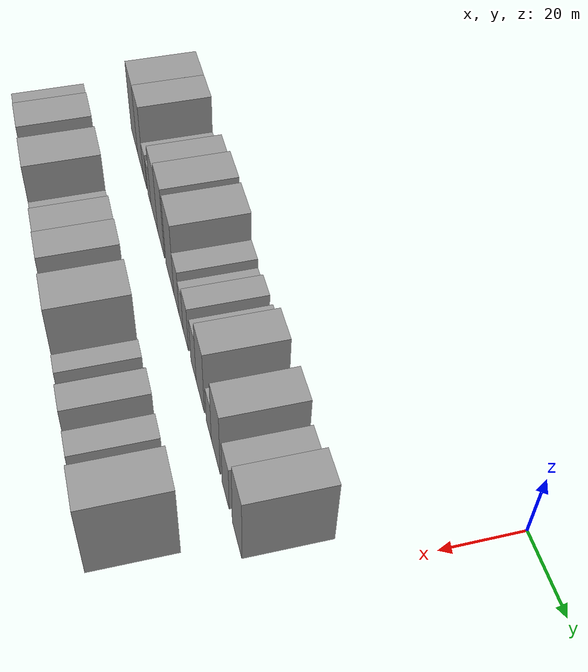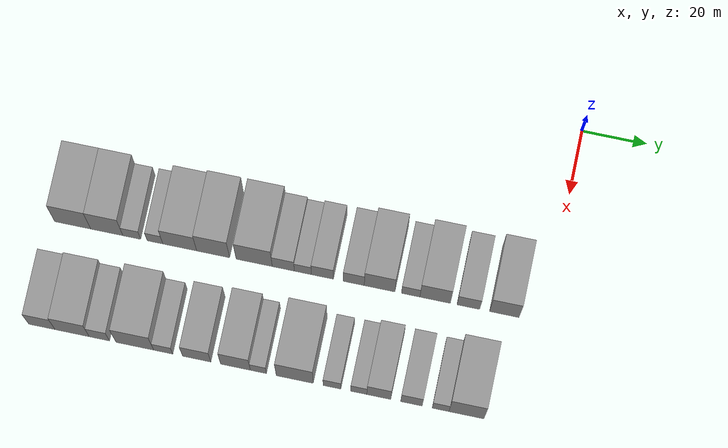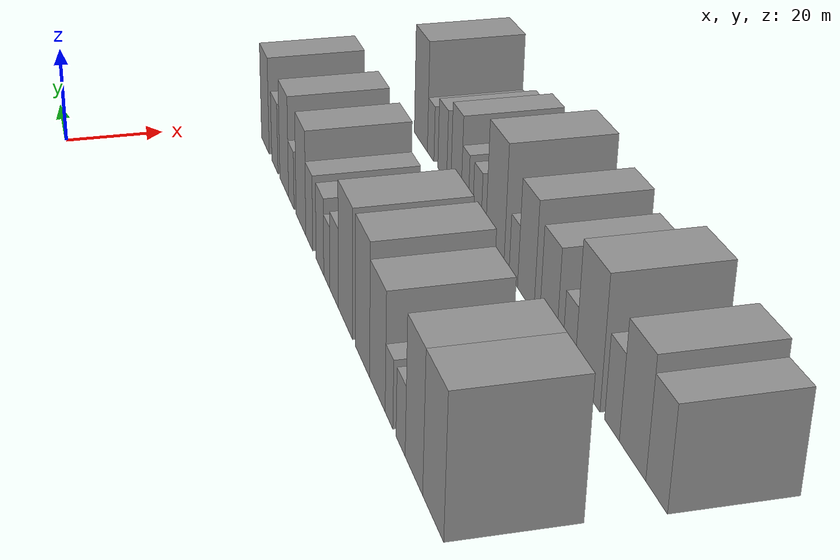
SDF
<sdf version="1.6">
 <world name="default">
  <model name="building_16">
   <static>1</static>
   <pose>50.0000 -144.1960 0 0.000000 0.000000 0.000000</pose>
   <link name="link">
    <pose>0 0 12.00 0 0 0</pose>
    <collision name="collision"><geometry><box><size>20.0000 11.0698 24.0000</size></box></geometry></collision>
    <visual name="visual">
     <cast_shadows>0</cast_shadows>
     <geometry><box><size>20.0000 11.0698 24.0000</size></box></geometry>
     <material>
      <script>
       <uri>model://grey_wall/materials/scripts</uri>
       <uri>model://grey_wall/materials/textures</uri>
       <name>vrc/grey_wall</name>
      </script>
     </material>
    </visual>
   </link>
  </model>
  <model name="building_17">
   <static>1</static>
   <pose>50.0000 -133.6998 0 0.000000 0.000000 0.000000</pose>
   <link name="link">
    <pose>0 0 12.00 0 0 0</pose>
    <collision name="collision"><geometry><box><size>20.0000 9.9225 24.0000</size></box></geometry></collision>
    <visual name="visual">
     <cast_shadows>0</cast_shadows>
     <geometry><box><size>20.0000 9.9225 24.0000</size></box></geometry>
     <material>
      <script>
       <uri>model://grey_wall/materials/scripts</uri>
       <uri>model://grey_wall/materials/textures</uri>
       <name>vrc/grey_wall</name>
      </script>
     </material>
    </visual>
   </link>
  </model>
  <model name="building_18">
   <static>1</static>
   <pose>50.0000 -126.0071 0 0.000000 0.000000 0.000000</pose>
   <link name="link">
    <pose>0 0 6.00 0 0 0</pose>
    <collision name="collision"><geometry><box><size>20.0000 5.4629 12.0000</size></box></geometry></collision>
    <visual name="visual">
     <cast_shadows>0</cast_shadows>
     <geometry><box><size>20.0000 5.4629 12.0000</size></box></geometry>
     <material>
      <script>
       <uri>model://grey_wall/materials/scripts</uri>
       <uri>model://grey_wall/materials/textures</uri>
       <name>vrc/grey_wall</name>
      </script>
     </material>
    </visual>
   </link>
  </model>
  <model name="building_19">
   <static>1</static>
   <pose>50.0000 -118.8650 0 0.000000 0.000000 0.000000</pose>
   <link name="link">
    <pose>0 0 6.00 0 0 0</pose>
    <collision name="collision"><geometry><box><size>20.0000 4.8213 12.0000</size></box></geometry></collision>
    <visual name="visual">
     <cast_shadows>0</cast_shadows>
     <geometry><box><size>20.0000 4.8213 12.0000</size></box></geometry>
     <material>
      <script>
       <uri>model://grey_wall/materials/scripts</uri>
       <uri>model://grey_wall/materials/textures</uri>
       <name>vrc/grey_wall</name>
      </script>
     </material>
    </visual>
   </link>
  </model>
  <model name="building_20">
   <static>1</static>
   <pose>50.0000 -111.2466 0 0.000000 0.000000 0.000000</pose>
   <link name="link">
    <pose>0 0 10.50 0 0 0</pose>
    <collision name="collision"><geometry><box><size>20.0000 10.4155 21.0000</size></box></geometry></collision>
    <visual name="visual">
     <cast_shadows>0</cast_shadows>
     <geometry><box><size>20.0000 10.4155 21.0000</size></box></geometry>
     <material>
      <script>
       <uri>model://grey_wall/materials/scripts</uri>
       <uri>model://grey_wall/materials/textures</uri>
       <name>vrc/grey_wall</name>
      </script>
     </material>
    </visual>
   </link>
  </model>
  <model name="building_21">
   <static>1</static>
   <pose>50.0000 -100.9907 0 0.000000 0.000000 0.000000</pose>
   <link name="link">
    <pose>0 0 12.00 0 0 0</pose>
    <collision name="collision"><geometry><box><size>20.0000 10.0962 24.0000</size></box></geometry></collision>
    <visual name="visual">
     <cast_shadows>0</cast_shadows>
     <geometry><box><size>20.0000 10.0962 24.0000</size></box></geometry>
     <material>
      <script>
       <uri>model://grey_wall/materials/scripts</uri>
       <uri>model://grey_wall/materials/textures</uri>
       <name>vrc/grey_wall</name>
      </script>
     </material>
    </visual>
   </link>
  </model>
  <model name="building_22">
   <static>1</static>
   <pose>50.0000 -88.4051 0 0.000000 0.000000 0.000000</pose>
   <link name="link">
    <pose>0 0 12.00 0 0 0</pose>
    <collision name="collision"><geometry><box><size>20.0000 11.0750 24.0000</size></box></geometry></collision>
    <visual name="visual">
     <cast_shadows>0</cast_shadows>
     <geometry><box><size>20.0000 11.0750 24.0000</size></box></geometry>
     <material>
      <script>
       <uri>model://grey_wall/materials/scripts</uri>
       <uri>model://grey_wall/materials/textures</uri>
       <name>vrc/grey_wall</name>
      </script>
     </material>
    </visual>
   </link>
  </model>
  <model name="building_23">
   <static>1</static>
   <pose>50.0000 -79.4754 0 0.000000 0.000000 0.000000</pose>
   <link name="link">
    <pose>0 0 7.50 0 0 0</pose>
    <collision name="collision"><geometry><box><size>20.0000 6.7845 15.0000</size></box></geometry></collision>
    <visual name="visual">
     <cast_shadows>0</cast_shadows>
     <geometry><box><size>20.0000 6.7845 15.0000</size></box></geometry>
     <material>
      <script>
       <uri>model://grey_wall/materials/scripts</uri>
       <uri>model://grey_wall/materials/textures</uri>
       <name>vrc/grey_wall</name>
      </script>
     </material>
    </visual>
   </link>
  </model>
  <model name="building_24">
   <static>1</static>
   <pose>50.0000 -73.4799 0 0.000000 0.000000 0.000000</pose>
   <link name="link">
    <pose>0 0 6.00 0 0 0</pose>
    <collision name="collision"><geometry><box><size>20.0000 5.2065 12.0000</size></box></geometry></collision>
    <visual name="visual">
     <cast_shadows>0</cast_shadows>
     <geometry><box><size>20.0000 5.2065 12.0000</size></box></geometry>
     <material>
      <script>
       <uri>model://grey_wall/materials/scripts</uri>
       <uri>model://grey_wall/materials/textures</uri>
       <name>vrc/grey_wall</name>
      </script>
     </material>
    </visual>
   </link>
  </model>
  <model name="building_25">
   <static>1</static>
   <pose>50.0000 -67.5074 0 0.000000 0.000000 0.000000</pose>
   <link name="link">
    <pose>0 0 7.50 0 0 0</pose>
    <collision name="collision"><geometry><box><size>20.0000 6.7385 15.0000</size></box></geometry></collision>
    <visual name="visual">
     <cast_shadows>0</cast_shadows>
     <geometry><box><size>20.0000 6.7385 15.0000</size></box></geometry>
     <material>
      <script>
       <uri>model://grey_wall/materials/scripts</uri>
       <uri>model://grey_wall/materials/textures</uri>
       <name>vrc/grey_wall</name>
      </script>
     </material>
    </visual>
   </link>
  </model>
  <model name="building_26">
   <static>1</static>
   <pose>50.0000 -57.9240 0 0.000000 0.000000 0.000000</pose>
   <link name="link">
    <pose>0 0 7.50 0 0 0</pose>
    <collision name="collision"><geometry><box><size>20.0000 6.4283 15.0000</size></box></geometry></collision>
    <visual name="visual">
     <cast_shadows>0</cast_shadows>
     <geometry><box><size>20.0000 6.4283 15.0000</size></box></geometry>
     <material>
      <script>
       <uri>model://grey_wall/materials/scripts</uri>
       <uri>model://grey_wall/materials/textures</uri>
       <name>vrc/grey_wall</name>
      </script>
     </material>
    </visual>
   </link>
  </model>
  <model name="building_27">
   <static>1</static>
   <pose>50.0000 -50.0287 0 0.000000 0.000000 0.000000</pose>
   <link name="link">
    <pose>0 0 10.50 0 0 0</pose>
    <collision name="collision"><geometry><box><size>20.0000 9.3624 21.0000</size></box></geometry></collision>
    <visual name="visual">
     <cast_shadows>0</cast_shadows>
     <geometry><box><size>20.0000 9.3624 21.0000</size></box></geometry>
     <material>
      <script>
       <uri>model://grey_wall/materials/scripts</uri>
       <uri>model://grey_wall/materials/textures</uri>
       <name>vrc/grey_wall</name>
      </script>
     </material>
    </visual>
   </link>
  </model>
  <model name="building_28">
   <static>1</static>
   <pose>50.0000 -40.5329 0 0.000000 0.000000 0.000000</pose>
   <link name="link">
    <pose>0 0 6.00 0 0 0</pose>
    <collision name="collision"><geometry><box><size>20.0000 5.6292 12.0000</size></box></geometry></collision>
    <visual name="visual">
     <cast_shadows>0</cast_shadows>
     <geometry><box><size>20.0000 5.6292 12.0000</size></box></geometry>
     <material>
      <script>
       <uri>model://grey_wall/materials/scripts</uri>
       <uri>model://grey_wall/materials/textures</uri>
       <name>vrc/grey_wall</name>
      </script>
     </material>
    </visual>
   </link>
  </model>
  <model name="building_29">
   <static>1</static>
   <pose>50.0000 -33.0718 0 0.000000 0.000000 0.000000</pose>
   <link name="link">
    <pose>0 0 10.50 0 0 0</pose>
    <collision name="collision"><geometry><box><size>20.0000 9.2932 21.0000</size></box></geometry></collision>
    <visual name="visual">
     <cast_shadows>0</cast_shadows>
     <geometry><box><size>20.0000 9.2932 21.0000</size></box></geometry>
     <material>
      <script>
       <uri>model://grey_wall/materials/scripts</uri>
       <uri>model://grey_wall/materials/textures</uri>
       <name>vrc/grey_wall</name>
      </script>
     </material>
    </visual>
   </link>
  </model>
  <model name="building_30">
   <static>1</static>
   <pose>50.0000 -22.9545 0 0.000000 0.000000 0.000000</pose>
   <link name="link">
    <pose>0 0 7.50 0 0 0</pose>
    <collision name="collision"><geometry><box><size>20.0000 6.9413 15.0000</size></box></geometry></collision>
    <visual name="visual">
     <cast_shadows>0</cast_shadows>
     <geometry><box><size>20.0000 6.9413 15.0000</size></box></geometry>
     <material>
      <script>
       <uri>model://grey_wall/materials/scripts</uri>
       <uri>model://grey_wall/materials/textures</uri>
       <name>vrc/grey_wall</name>
      </script>
     </material>
    </visual>
   </link>
  </model>
  <model name="building_31">
   <static>1</static>
   <pose>50.0000 -11.9963 0 0.000000 0.000000 0.000000</pose>
   <link name="link">
    <pose>0 0 10.50 0 0 0</pose>
    <collision name="collision"><geometry><box><size>20.0000 8.9750 21.0000</size></box></geometry></collision>
    <visual name="visual">
     <cast_shadows>0</cast_shadows>
     <geometry><box><size>20.0000 8.9750 21.0000</size></box></geometry>
     <material>
      <script>
       <uri>model://grey_wall/materials/scripts</uri>
       <uri>model://grey_wall/materials/textures</uri>
       <name>vrc/grey_wall</name>
      </script>
     </material>
    </visual>
   </link>
  </model>
  <model name="building_80">
   <static>1</static>
   <pose>82.0000 -146.3000 0 0.000000 0.000000 0.000000</pose>
   <link name="link">
    <pose>0 0 9.00 0 0 0</pose>
    <collision name="collision"><geometry><box><size>20.0000 8.0791 18.0000</size></box></geometry></collision>
    <visual name="visual">
     <cast_shadows>0</cast_shadows>
     <geometry><box><size>20.0000 8.0791 18.0000</size></box></geometry>
     <material>
      <script>
       <uri>model://grey_wall/materials/scripts</uri>
       <uri>model://grey_wall/materials/textures</uri>
       <name>vrc/grey_wall</name>
      </script>
     </material>
    </visual>
   </link>
  </model>
  <model name="building_81">
   <static>1</static>
   <pose>82.0000 -137.0313 0 0.000000 0.000000 0.000000</pose>
   <link name="link">
    <pose>0 0 10.50 0 0 0</pose>
    <collision name="collision"><geometry><box><size>20.0000 10.4584 21.0000</size></box></geometry></collision>
    <visual name="visual">
     <cast_shadows>0</cast_shadows>
     <geometry><box><size>20.0000 10.4584 21.0000</size></box></geometry>
     <material>
      <script>
       <uri>model://grey_wall/materials/scripts</uri>
       <uri>model://grey_wall/materials/textures</uri>
       <name>vrc/grey_wall</name>
      </script>
     </material>
    </visual>
   </link>
  </model>
  <model name="building_82">
   <static>1</static>
   <pose>82.0000 -128.7180 0 0.000000 0.000000 0.000000</pose>
   <link name="link">
    <pose>0 0 7.50 0 0 0</pose>
    <collision name="collision"><geometry><box><size>20.0000 6.1682 15.0000</size></box></geometry></collision>
    <visual name="visual">
     <cast_shadows>0</cast_shadows>
     <geometry><box><size>20.0000 6.1682 15.0000</size></box></geometry>
     <material>
      <script>
       <uri>model://grey_wall/materials/scripts</uri>
       <uri>model://grey_wall/materials/textures</uri>
       <name>vrc/grey_wall</name>
      </script>
     </material>
    </visual>
   </link>
  </model>
  <model name="building_83">
   <static>1</static>
   <pose>82.0000 -117.8757 0 0.000000 0.000000 0.000000</pose>
   <link name="link">
    <pose>0 0 12.00 0 0 0</pose>
    <collision name="collision"><geometry><box><size>20.0000 11.5164 24.0000</size></box></geometry></collision>
    <visual name="visual">
     <cast_shadows>0</cast_shadows>
     <geometry><box><size>20.0000 11.5164 24.0000</size></box></geometry>
     <material>
      <script>
       <uri>model://grey_wall/materials/scripts</uri>
       <uri>model://grey_wall/materials/textures</uri>
       <name>vrc/grey_wall</name>
      </script>
     </material>
    </visual>
   </link>
  </model>
  <model name="building_84">
   <static>1</static>
   <pose>82.0000 -109.2105 0 0.000000 0.000000 0.000000</pose>
   <link name="link">
    <pose>0 0 6.00 0 0 0</pose>
    <collision name="collision"><geometry><box><size>20.0000 5.8140 12.0000</size></box></geometry></collision>
    <visual name="visual">
     <cast_shadows>0</cast_shadows>
     <geometry><box><size>20.0000 5.8140 12.0000</size></box></geometry>
     <material>
      <script>
       <uri>model://grey_wall/materials/scripts</uri>
       <uri>model://grey_wall/materials/textures</uri>
       <name>vrc/grey_wall</name>
      </script>
     </material>
    </visual>
   </link>
  </model>
  <model name="building_85">
   <static>1</static>
   <pose>82.0000 -99.0023 0 0.000000 0.000000 0.000000</pose>
   <link name="link">
    <pose>0 0 9.00 0 0 0</pose>
    <collision name="collision"><geometry><box><size>20.0000 8.6024 18.0000</size></box></geometry></collision>
    <visual name="visual">
     <cast_shadows>0</cast_shadows>
     <geometry><box><size>20.0000 8.6024 18.0000</size></box></geometry>
     <material>
      <script>
       <uri>model://grey_wall/materials/scripts</uri>
       <uri>model://grey_wall/materials/textures</uri>
       <name>vrc/grey_wall</name>
      </script>
     </material>
    </visual>
   </link>
  </model>
  <model name="building_86">
   <static>1</static>
   <pose>82.0000 -87.1855 0 0.000000 0.000000 0.000000</pose>
   <link name="link">
    <pose>0 0 10.50 0 0 0</pose>
    <collision name="collision"><geometry><box><size>20.0000 9.0312 21.0000</size></box></geometry></collision>
    <visual name="visual">
     <cast_shadows>0</cast_shadows>
     <geometry><box><size>20.0000 9.0312 21.0000</size></box></geometry>
     <material>
      <script>
       <uri>model://grey_wall/materials/scripts</uri>
       <uri>model://grey_wall/materials/textures</uri>
       <name>vrc/grey_wall</name>
      </script>
     </material>
    </visual>
   </link>
  </model>
  <model name="building_87">
   <static>1</static>
   <pose>82.0000 -80.2233 0 0.000000 0.000000 0.000000</pose>
   <link name="link">
    <pose>0 0 6.00 0 0 0</pose>
    <collision name="collision"><geometry><box><size>20.0000 4.8932 12.0000</size></box></geometry></collision>
    <visual name="visual">
     <cast_shadows>0</cast_shadows>
     <geometry><box><size>20.0000 4.8932 12.0000</size></box></geometry>
     <material>
      <script>
       <uri>model://grey_wall/materials/scripts</uri>
       <uri>model://grey_wall/materials/textures</uri>
       <name>vrc/grey_wall</name>
      </script>
     </material>
    </visual>
   </link>
  </model>
  <model name="building_88">
   <static>1</static>
   <pose>82.0000 -69.1565 0 0.000000 0.000000 0.000000</pose>
   <link name="link">
    <pose>0 0 12.00 0 0 0</pose>
    <collision name="collision"><geometry><box><size>20.0000 11.2403 24.0000</size></box></geometry></collision>
    <visual name="visual">
     <cast_shadows>0</cast_shadows>
     <geometry><box><size>20.0000 11.2403 24.0000</size></box></geometry>
     <material>
      <script>
       <uri>model://grey_wall/materials/scripts</uri>
       <uri>model://grey_wall/materials/textures</uri>
       <name>vrc/grey_wall</name>
      </script>
     </material>
    </visual>
   </link>
  </model>
  <model name="building_89">
   <static>1</static>
   <pose>82.0000 -57.8440 0 0.000000 0.000000 0.000000</pose>
   <link name="link">
    <pose>0 0 6.00 0 0 0</pose>
    <collision name="collision"><geometry><box><size>20.0000 5.3847 12.0000</size></box></geometry></collision>
    <visual name="visual">
     <cast_shadows>0</cast_shadows>
     <geometry><box><size>20.0000 5.3847 12.0000</size></box></geometry>
     <material>
      <script>
       <uri>model://grey_wall/materials/scripts</uri>
       <uri>model://grey_wall/materials/textures</uri>
       <name>vrc/grey_wall</name>
      </script>
     </material>
    </visual>
   </link>
  </model>
  <model name="building_90">
   <static>1</static>
   <pose>82.0000 -49.7086 0 0.000000 0.000000 0.000000</pose>
   <link name="link">
    <pose>0 0 6.00 0 0 0</pose>
    <collision name="collision"><geometry><box><size>20.0000 4.8861 12.0000</size></box></geometry></collision>
    <visual name="visual">
     <cast_shadows>0</cast_shadows>
     <geometry><box><size>20.0000 4.8861 12.0000</size></box></geometry>
     <material>
      <script>
       <uri>model://grey_wall/materials/scripts</uri>
       <uri>model://grey_wall/materials/textures</uri>
       <name>vrc/grey_wall</name>
      </script>
     </material>
    </visual>
   </link>
  </model>
  <model name="building_91">
   <static>1</static>
   <pose>82.0000 -43.6362 0 0.000000 0.000000 0.000000</pose>
   <link name="link">
    <pose>0 0 9.00 0 0 0</pose>
    <collision name="collision"><geometry><box><size>20.0000 7.2587 18.0000</size></box></geometry></collision>
    <visual name="visual">
     <cast_shadows>0</cast_shadows>
     <geometry><box><size>20.0000 7.2587 18.0000</size></box></geometry>
     <material>
      <script>
       <uri>model://grey_wall/materials/scripts</uri>
       <uri>model://grey_wall/materials/textures</uri>
       <name>vrc/grey_wall</name>
      </script>
     </material>
    </visual>
   </link>
  </model>
  <model name="building_92">
   <static>1</static>
   <pose>82.0000 -33.7361 0 0.000000 0.000000 0.000000</pose>
   <link name="link">
    <pose>0 0 7.50 0 0 0</pose>
    <collision name="collision"><geometry><box><size>20.0000 6.5416 15.0000</size></box></geometry></collision>
    <visual name="visual">
     <cast_shadows>0</cast_shadows>
     <geometry><box><size>20.0000 6.5416 15.0000</size></box></geometry>
     <material>
      <script>
       <uri>model://grey_wall/materials/scripts</uri>
       <uri>model://grey_wall/materials/textures</uri>
       <name>vrc/grey_wall</name>
      </script>
     </material>
    </visual>
   </link>
  </model>
  <model name="building_93">
   <static>1</static>
   <pose>82.0000 -24.9130 0 0.000000 0.000000 0.000000</pose>
   <link name="link">
    <pose>0 0 6.00 0 0 0</pose>
    <collision name="collision"><geometry><box><size>20.0000 5.1046 12.0000</size></box></geometry></collision>
    <visual name="visual">
     <cast_shadows>0</cast_shadows>
     <geometry><box><size>20.0000 5.1046 12.0000</size></box></geometry>
     <material>
      <script>
       <uri>model://grey_wall/materials/scripts</uri>
       <uri>model://grey_wall/materials/textures</uri>
       <name>vrc/grey_wall</name>
      </script>
     </material>
    </visual>
   </link>
  </model>
  <model name="building_94">
   <static>1</static>
   <pose>82.0000 -17.0686 0 0.000000 0.000000 0.000000</pose>
   <link name="link">
    <pose>0 0 12.00 0 0 0</pose>
    <collision name="collision"><geometry><box><size>20.0000 10.5841 24.0000</size></box></geometry></collision>
    <visual name="visual">
     <cast_shadows>0</cast_shadows>
     <geometry><box><size>20.0000 10.5841 24.0000</size></box></geometry>
     <material>
      <script>
       <uri>model://grey_wall/materials/scripts</uri>
       <uri>model://grey_wall/materials/textures</uri>
       <name>vrc/grey_wall</name>
      </script>
     </material>
    </visual>
   </link>
  </model>
 </world>
</sdf>
